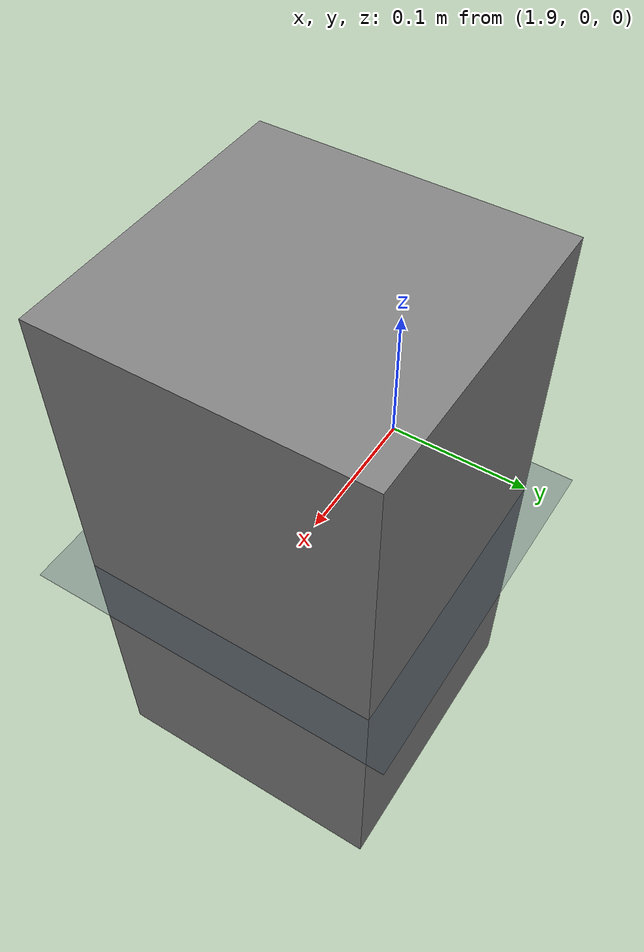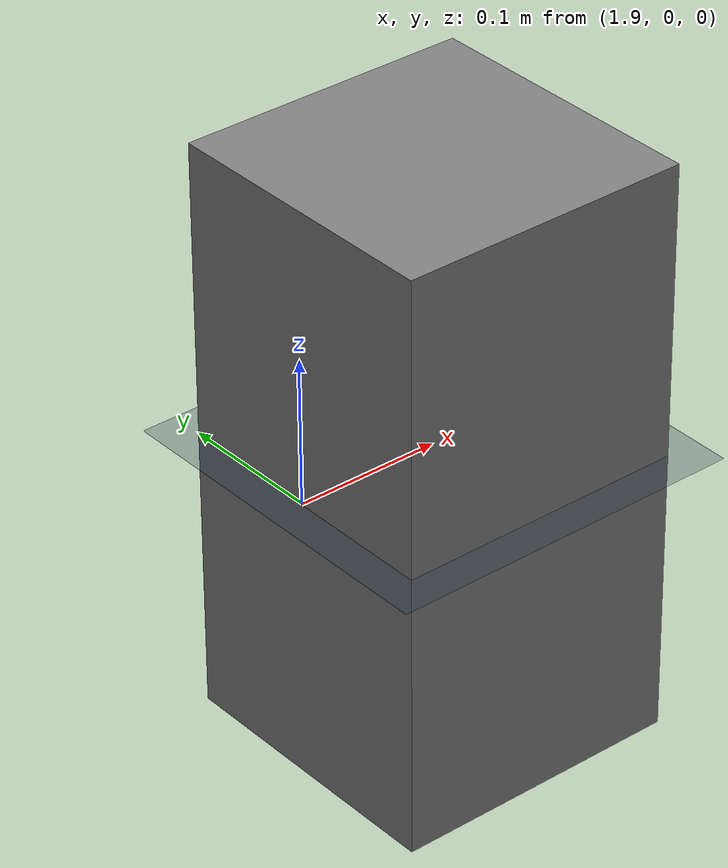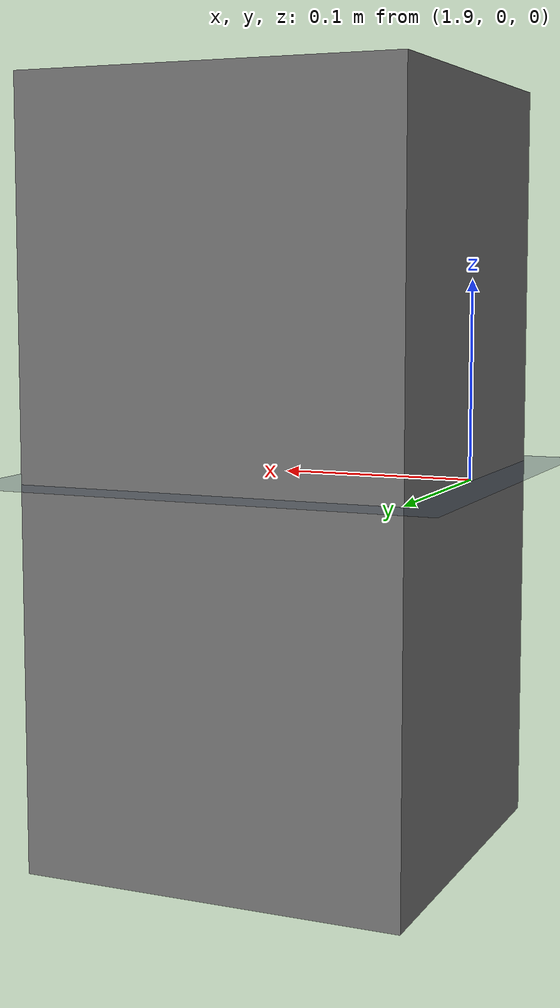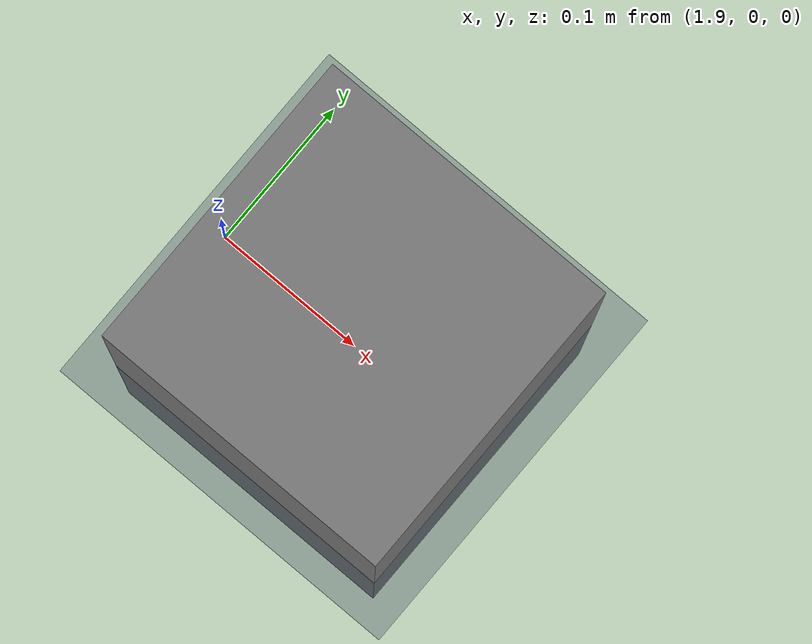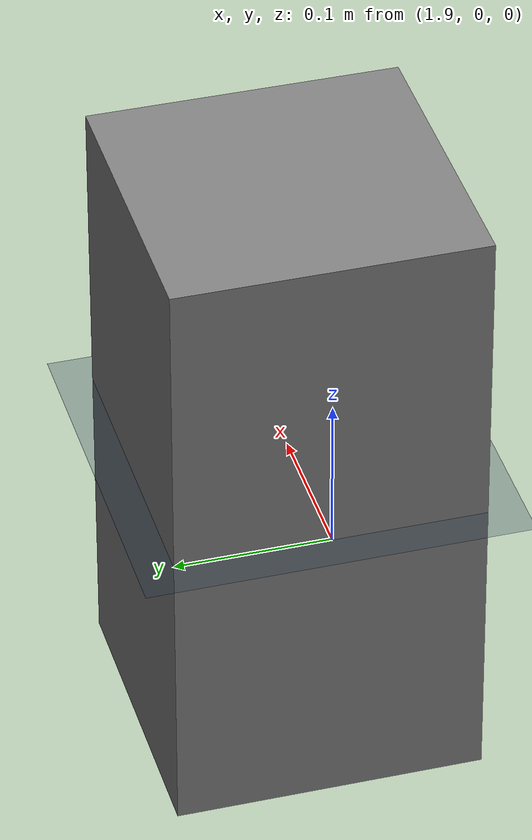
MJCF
<mujoco model="SATYRR_OLD_V2">
   <compiler eulerseq = "zyx" angle="radian" coordinate="local" meshdir="satyrr_wholebody/"/>
   <size njmax="-1" nconmax="-1" />
   <option integrator="RK4" timestep="0.001" solver="PGS"/>

  <default>
     <geom contype = '0' conaffinity = '0'/>
     <default class = 'collision-default'>
        <geom contype = '6' conaffinity = '0'/>
     </default>
       <default class = 'collision-group-a'>
           <geom contype = '2' conaffinity = '4'/>
       </default>
       <default class = 'collision-group-b'>
           <geom contype = '4' conaffinity = '2'/>
       </default>
   </default>

   <asset>
       <mesh name="Torso" file="Torso.STL" />
       <mesh name="Thigh_R" file="Thigh_R.STL" />
       <mesh name="Shin_R" file="Shin_R.STL" />
       <mesh name="Wheel_R" file="Wheel_R.STL" />
       <mesh name="Thigh_L" file="Thigh_L.STL" />
       <mesh name="Shin_L" file="Shin_L.STL" />
       <mesh name="Wheel_L" file="Wheel_L.STL" />
       <mesh name="Shoulder_U_L" file="Shoulder_U_L.STL" />
       <mesh name="Shoulder_L" file="Shoulder_L.STL" />
       <mesh name="Arm_L" file="Arm_L.STL" />
       <mesh name="Shank_L" file="Shank_L.STL" />
       <mesh name="Shoulder_U_R" file="Shoulder_U_R.STL" />
       <mesh name="Shoulder_R" file="Shoulder_R.STL" />
       <mesh name="Arm_R" file="Arm_R.STL" />
       <mesh name="Shank_R" file="Shank_R.STL" />
       <texture builtin="checker" height="512" name="texplane" rgb1=".2 .3 .4" rgb2=".1 0.15 0.2" type="2d" width="512"/>
       <material name="floorplane" reflectance="0.5" texrepeat="1 1" texture="texplane" texuniform="true"/>
       <material name="matplane" reflectance="0.3" texture="texplane" texrepeat="1 1" texuniform="true"/>
   </asset>

   <worldbody>
      <geom class = "collision-default" name="floor0" pos="0.0 0.0 0.0" size="10 10 1" type="plane" condim="3" material="floorplane"></geom>
      <light directional="true" ambient="0.2 0.2 0.2" diffuse="0.8 0.8 0.8" specular="0.3 0.3 0.3" castshadow="false" pos="0 0 4" dir="0 0 -1" name="light0"></light>

      <body pos="2 0 0">
         <inertial pos="0 0 0" mass="10" diaginertia="166.667 166.667 166.667"/>
         <geom type="box" pos="0 0 0" size="0.1 0.1 0.2" class = "collision-default"/>
      </body>

   </worldbody>

</mujoco>
